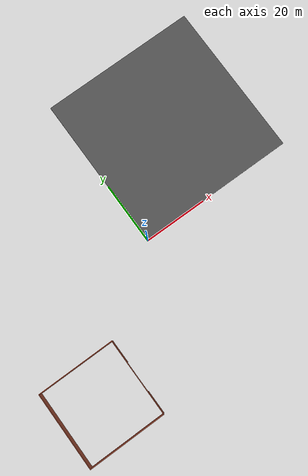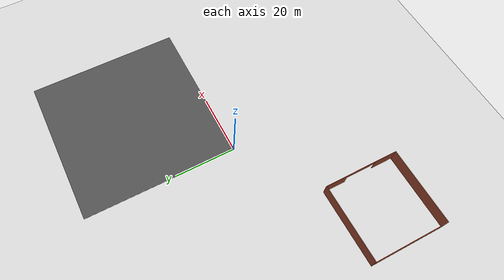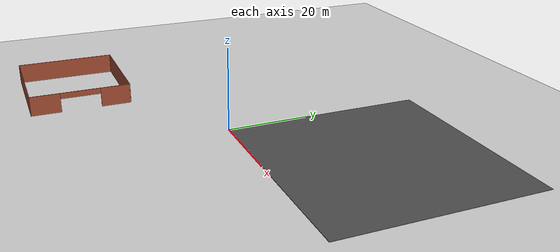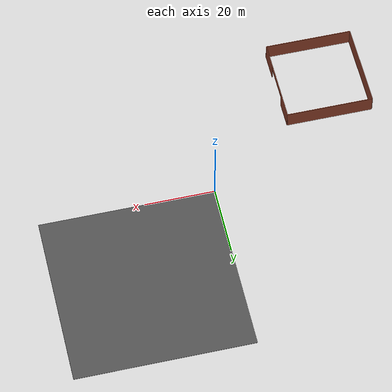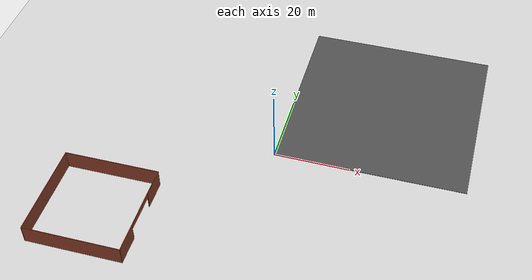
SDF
<sdf version="1.7">
 <world name="default">
  <model name="ground_plane">
   <static>1</static>
   <link name="link">
    <collision name="collision">
     <geometry><plane><normal>0 0 1</normal><size>100 100</size></plane></geometry>
     <surface>
      <contact><collide_bitmask>65535</collide_bitmask></contact>
      <friction><ode><mu>100</mu><mu2>50</mu2></ode></friction>
     </surface>
    </collision>
    <visual name="visual">
     <cast_shadows>0</cast_shadows>
     <geometry><plane><normal>0 0 1</normal><size>100 100</size></plane></geometry>
     <material>
      <script><uri>file://media/materials/scripts/gazebo.material</uri><name>Gazebo/Grey</name></script>
     </material>
    </visual>
   </link>
  </model>
  <model name="asphalt_plane">
   <link name="link">
    <inertial>
     <mass>1</mass>
     <inertia><ixx>1</ixx><ixy>0</ixy><ixz>0</ixz><iyy>1</iyy><iyz>0</iyz><izz>1</izz></inertia>
    </inertial>
    <visual name="visual">
     <cast_shadows>0</cast_shadows>
     <geometry><box><size>50 50 0.1</size></box></geometry>
     <material>
      <script>
       <uri>model://asphalt_plane/materials/scripts</uri>
       <uri>model://asphalt_plane/materials/textures</uri>
       <name>vrc/asphalt</name>
      </script>
      <shader type="pixel"><normal_map>__default__</normal_map></shader>
      <ambient>0.5 0.5 0.5 1</ambient>
      <diffuse>0.5 0.5 0.5 1</diffuse>
      <specular>0.2 0.2 0.2 1</specular>
      <emissive>0 0 0 1</emissive>
     </material>
    </visual>
    <collision name="collision">
     <geometry><box><size>50 50 0.1</size></box></geometry>
     <surface>
      <friction>
       <ode><mu>1</mu><mu2>1</mu2><fdir1>0 0 0</fdir1><slip1>0</slip1><slip2>0</slip2></ode>
       <torsional>
        <coefficient>1</coefficient>
        <patch_radius>0</patch_radius>
        <surface_radius>0</surface_radius>
        <use_patch_radius>1</use_patch_radius>
        <ode><slip>0</slip></ode>
       </torsional>
      </friction>
      <bounce><restitution_coefficient>0</restitution_coefficient><threshold>1e+06</threshold></bounce>
      <contact>
       <collide_without_contact>0</collide_without_contact>
       <collide_without_contact_bitmask>1</collide_without_contact_bitmask>
       <collide_bitmask>1</collide_bitmask>
       <ode>
        <soft_cfm>0</soft_cfm>
        <soft_erp>0.2</soft_erp>
        <kp>1e+13</kp>
        <kd>1</kd>
        <max_vel>0.01</max_vel>
        <min_depth>0</min_depth>
       </ode>
       <bullet>
        <split_impulse>1</split_impulse>
        <split_impulse_penetration_threshold>-0.01</split_impulse_penetration_threshold>
        <soft_cfm>0</soft_cfm>
        <soft_erp>0.2</soft_erp>
        <kp>1e+13</kp>
        <kd>1</kd>
       </bullet>
      </contact>
     </surface>
    </collision>
   </link>
   <static>1</static>
   <pose>25 25 0 0 -0 0</pose>
  </model>
  <model name="galpao_1">
   <link name="Wall_1">
    <pose>0 12.4246 0 0 -0 0.002696</pose>
    <visual name="Wall_1_Visual">
     <pose>0 0 2.5 0 -0 0</pose>
     <geometry><box><size>25 0.15 5</size></box></geometry>
     <material>
      <script><uri>file://media/materials/scripts/gazebo.material</uri><name>Gazebo/Bricks</name></script>
      <ambient>1 1 1 1</ambient>
      <shader type="pixel"/>
     </material>
     <meta><layer>0</layer></meta>
    </visual>
    <collision name="Wall_1_Collision">
     <pose>0 0 2.5 0 -0 0</pose>
     <geometry><box><size>25 0.15 5</size></box></geometry>
     <surface>
      <friction>
       <ode><mu>1</mu><mu2>1</mu2><fdir1>0 0 0</fdir1><slip1>0</slip1><slip2>0</slip2></ode>
       <torsional>
        <coefficient>1</coefficient>
        <patch_radius>0</patch_radius>
        <surface_radius>0</surface_radius>
        <use_patch_radius>1</use_patch_radius>
        <ode><slip>0</slip></ode>
       </torsional>
      </friction>
      <bounce><restitution_coefficient>0</restitution_coefficient><threshold>1e+06</threshold></bounce>
      <contact>
       <collide_without_contact>0</collide_without_contact>
       <collide_without_contact_bitmask>1</collide_without_contact_bitmask>
       <collide_bitmask>1</collide_bitmask>
       <ode>
        <soft_cfm>0</soft_cfm>
        <soft_erp>0.2</soft_erp>
        <kp>1e+13</kp>
        <kd>1</kd>
        <max_vel>0.01</max_vel>
        <min_depth>0</min_depth>
       </ode>
       <bullet>
        <split_impulse>1</split_impulse>
        <split_impulse_penetration_threshold>-0.01</split_impulse_penetration_threshold>
        <soft_cfm>0</soft_cfm>
        <soft_erp>0.2</soft_erp>
        <kp>1e+13</kp>
        <kd>1</kd>
       </bullet>
      </contact>
     </surface>
    </collision>
   </link>
   <link name="Wall_2">
    <pose>12.425 0.033073 0 0 0 -1.5708</pose>
    <inertial>
     <mass>1</mass>
     <inertia><ixx>1</ixx><ixy>0</ixy><ixz>0</ixz><iyy>1</iyy><iyz>0</iyz><izz>1</izz></inertia>
    </inertial>
    <visual name="Wall_2_Visual_0">
     <pose>-8.75 0 2.5 0 -0 0</pose>
     <geometry><box><size>7.5 0.15 5</size></box></geometry>
     <material>
      <script><uri>file://media/materials/scripts/gazebo.material</uri><name>Gazebo/Bricks</name></script>
      <ambient>1 1 1 1</ambient>
      <shader type="pixel"><normal_map>__default__</normal_map></shader>
      <diffuse>1 1 1 1</diffuse>
      <specular>0.2 0.2 0.2 1</specular>
      <emissive>0 0 0 1</emissive>
     </material>
     <meta><layer>0</layer></meta>
    </visual>
    <visual name="Wall_2_Visual_1">
     <pose>8.75 0 2.5 0 -0 0</pose>
     <geometry><box><size>7.5 0.15 5</size></box></geometry>
     <material>
      <script><uri>file://media/materials/scripts/gazebo.material</uri><name>Gazebo/Bricks</name></script>
      <ambient>1 1 1 1</ambient>
      <shader type="pixel"><normal_map>__default__</normal_map></shader>
      <diffuse>1 1 1 1</diffuse>
      <specular>0.2 0.2 0.2 1</specular>
      <emissive>0 0 0 1</emissive>
     </material>
     <meta><layer>0</layer></meta>
    </visual>
    <visual name="Wall_2_Visual_2">
     <pose>0 0 4.25 0 -0 0</pose>
     <geometry><box><size>10 0.15 1.5</size></box></geometry>
     <material>
      <script><uri>file://media/materials/scripts/gazebo.material</uri><name>Gazebo/Bricks</name></script>
      <ambient>1 1 1 1</ambient>
      <shader type="pixel"><normal_map>__default__</normal_map></shader>
      <diffuse>1 1 1 1</diffuse>
      <specular>0.2 0.2 0.2 1</specular>
      <emissive>0 0 0 1</emissive>
     </material>
     <meta><layer>0</layer></meta>
    </visual>
    <collision name="Wall_2_Collision_0">
     <pose>-8.75 0 2.5 0 -0 0</pose>
     <geometry><box><size>7.5 0.15 5</size></box></geometry>
     <surface>
      <friction>
       <ode><mu>1</mu><mu2>1</mu2><fdir1>0 0 0</fdir1><slip1>0</slip1><slip2>0</slip2></ode>
       <torsional>
        <coefficient>1</coefficient>
        <patch_radius>0</patch_radius>
        <surface_radius>0</surface_radius>
        <use_patch_radius>1</use_patch_radius>
        <ode><slip>0</slip></ode>
       </torsional>
      </friction>
      <bounce><restitution_coefficient>0</restitution_coefficient><threshold>1e+06</threshold></bounce>
      <contact>
       <collide_without_contact>0</collide_without_contact>
       <collide_without_contact_bitmask>1</collide_without_contact_bitmask>
       <collide_bitmask>1</collide_bitmask>
       <ode>
        <soft_cfm>0</soft_cfm>
        <soft_erp>0.2</soft_erp>
        <kp>1e+13</kp>
        <kd>1</kd>
        <max_vel>0.01</max_vel>
        <min_depth>0</min_depth>
       </ode>
       <bullet>
        <split_impulse>1</split_impulse>
        <split_impulse_penetration_threshold>-0.01</split_impulse_penetration_threshold>
        <soft_cfm>0</soft_cfm>
        <soft_erp>0.2</soft_erp>
        <kp>1e+13</kp>
        <kd>1</kd>
       </bullet>
      </contact>
     </surface>
    </collision>
    <collision name="Wall_2_Collision_1">
     <pose>8.75 0 2.5 0 -0 0</pose>
     <geometry><box><size>7.5 0.15 5</size></box></geometry>
     <surface>
      <friction>
       <ode><mu>1</mu><mu2>1</mu2><fdir1>0 0 0</fdir1><slip1>0</slip1><slip2>0</slip2></ode>
       <torsional>
        <coefficient>1</coefficient>
        <patch_radius>0</patch_radius>
        <surface_radius>0</surface_radius>
        <use_patch_radius>1</use_patch_radius>
        <ode><slip>0</slip></ode>
       </torsional>
      </friction>
      <bounce><restitution_coefficient>0</restitution_coefficient><threshold>1e+06</threshold></bounce>
      <contact>
       <collide_without_contact>0</collide_without_contact>
       <collide_without_contact_bitmask>1</collide_without_contact_bitmask>
       <collide_bitmask>1</collide_bitmask>
       <ode>
        <soft_cfm>0</soft_cfm>
        <soft_erp>0.2</soft_erp>
        <kp>1e+13</kp>
        <kd>1</kd>
        <max_vel>0.01</max_vel>
        <min_depth>0</min_depth>
       </ode>
       <bullet>
        <split_impulse>1</split_impulse>
        <split_impulse_penetration_threshold>-0.01</split_impulse_penetration_threshold>
        <soft_cfm>0</soft_cfm>
        <soft_erp>0.2</soft_erp>
        <kp>1e+13</kp>
        <kd>1</kd>
       </bullet>
      </contact>
     </surface>
    </collision>
    <collision name="Wall_2_Collision_2">
     <pose>0 0 4.25 0 -0 0</pose>
     <geometry><box><size>10 0.15 1.5</size></box></geometry>
     <surface>
      <friction>
       <ode><mu>1</mu><mu2>1</mu2><fdir1>0 0 0</fdir1><slip1>0</slip1><slip2>0</slip2></ode>
       <torsional>
        <coefficient>1</coefficient>
        <patch_radius>0</patch_radius>
        <surface_radius>0</surface_radius>
        <use_patch_radius>1</use_patch_radius>
        <ode><slip>0</slip></ode>
       </torsional>
      </friction>
      <bounce><restitution_coefficient>0</restitution_coefficient><threshold>1e+06</threshold></bounce>
      <contact>
       <collide_without_contact>0</collide_without_contact>
       <collide_without_contact_bitmask>1</collide_without_contact_bitmask>
       <collide_bitmask>1</collide_bitmask>
       <ode>
        <soft_cfm>0</soft_cfm>
        <soft_erp>0.2</soft_erp>
        <kp>1e+13</kp>
        <kd>1</kd>
        <max_vel>0.01</max_vel>
        <min_depth>0</min_depth>
       </ode>
       <bullet>
        <split_impulse>1</split_impulse>
        <split_impulse_penetration_threshold>-0.01</split_impulse_penetration_threshold>
        <soft_cfm>0</soft_cfm>
        <soft_erp>0.2</soft_erp>
        <kp>1e+13</kp>
        <kd>1</kd>
       </bullet>
      </contact>
     </surface>
    </collision>
   </link>
   <link name="Wall_3">
    <pose>-12.425 -0.033427 0 0 0 -1.5708</pose>
    <visual name="Wall_3_Visual">
     <pose>0 0 2.5 0 -0 0</pose>
     <geometry><box><size>24.9997 0.15 5</size></box></geometry>
     <material>
      <script><uri>file://media/materials/scripts/gazebo.material</uri><name>Gazebo/Bricks</name></script>
      <ambient>1 1 1 1</ambient>
      <shader type="pixel"/>
     </material>
     <meta><layer>0</layer></meta>
    </visual>
    <collision name="Wall_3_Collision">
     <pose>0 0 2.5 0 -0 0</pose>
     <geometry><box><size>24.9997 0.15 5</size></box></geometry>
     <surface>
      <friction>
       <ode><mu>1</mu><mu2>1</mu2><fdir1>0 0 0</fdir1><slip1>0</slip1><slip2>0</slip2></ode>
       <torsional>
        <coefficient>1</coefficient>
        <patch_radius>0</patch_radius>
        <surface_radius>0</surface_radius>
        <use_patch_radius>1</use_patch_radius>
        <ode><slip>0</slip></ode>
       </torsional>
      </friction>
      <bounce><restitution_coefficient>0</restitution_coefficient><threshold>1e+06</threshold></bounce>
      <contact>
       <collide_without_contact>0</collide_without_contact>
       <collide_without_contact_bitmask>1</collide_without_contact_bitmask>
       <collide_bitmask>1</collide_bitmask>
       <ode>
        <soft_cfm>0</soft_cfm>
        <soft_erp>0.2</soft_erp>
        <kp>1e+13</kp>
        <kd>1</kd>
        <max_vel>0.01</max_vel>
        <min_depth>0</min_depth>
       </ode>
       <bullet>
        <split_impulse>1</split_impulse>
        <split_impulse_penetration_threshold>-0.01</split_impulse_penetration_threshold>
        <soft_cfm>0</soft_cfm>
        <soft_erp>0.2</soft_erp>
        <kp>1e+13</kp>
        <kd>1</kd>
       </bullet>
      </contact>
     </surface>
    </collision>
   </link>
   <link name="Wall_4">
    <pose>0 -12.4249 0 0 -0 0.002656</pose>
    <visual name="Wall_4_Visual">
     <pose>0 0 2.5 0 -0 0</pose>
     <geometry><box><size>25 0.15 5</size></box></geometry>
     <material>
      <script><uri>file://media/materials/scripts/gazebo.material</uri><name>Gazebo/Bricks</name></script>
      <ambient>1 1 1 1</ambient>
      <shader type="pixel"/>
     </material>
     <meta><layer>0</layer></meta>
    </visual>
    <collision name="Wall_4_Collision">
     <pose>0 0 2.5 0 -0 0</pose>
     <geometry><box><size>25 0.15 5</size></box></geometry>
     <surface>
      <friction>
       <ode><mu>1</mu><mu2>1</mu2><fdir1>0 0 0</fdir1><slip1>0</slip1><slip2>0</slip2></ode>
       <torsional>
        <coefficient>1</coefficient>
        <patch_radius>0</patch_radius>
        <surface_radius>0</surface_radius>
        <use_patch_radius>1</use_patch_radius>
        <ode><slip>0</slip></ode>
       </torsional>
      </friction>
      <bounce><restitution_coefficient>0</restitution_coefficient><threshold>1e+06</threshold></bounce>
      <contact>
       <collide_without_contact>0</collide_without_contact>
       <collide_without_contact_bitmask>1</collide_without_contact_bitmask>
       <collide_bitmask>1</collide_bitmask>
       <ode>
        <soft_cfm>0</soft_cfm>
        <soft_erp>0.2</soft_erp>
        <kp>1e+13</kp>
        <kd>1</kd>
        <max_vel>0.01</max_vel>
        <min_depth>0</min_depth>
       </ode>
       <bullet>
        <split_impulse>1</split_impulse>
        <split_impulse_penetration_threshold>-0.01</split_impulse_penetration_threshold>
        <soft_cfm>0</soft_cfm>
        <soft_erp>0.2</soft_erp>
        <kp>1e+13</kp>
        <kd>1</kd>
       </bullet>
      </contact>
     </surface>
    </collision>
   </link>
   <static>1</static>
   <pose>-37.5 -30 0 0 -0 0</pose>
  </model>
 </world>
</sdf>
